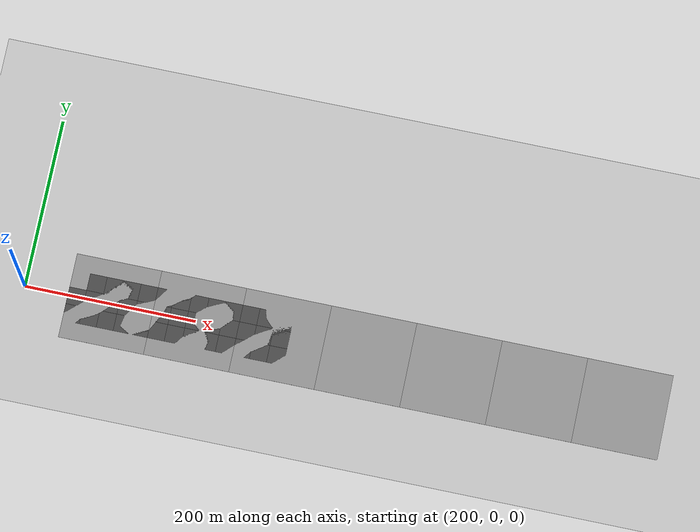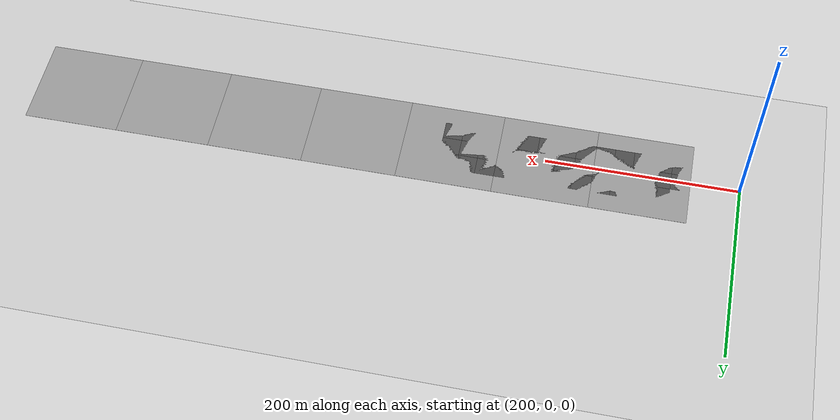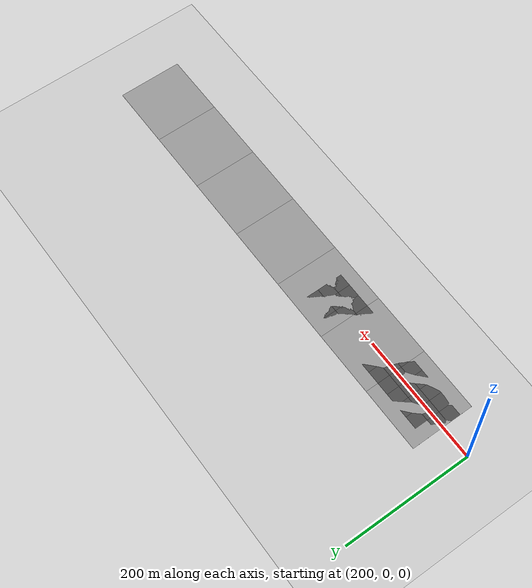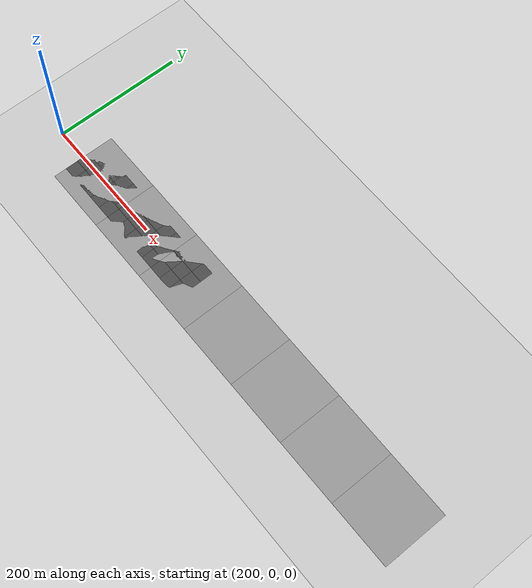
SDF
<sdf version="1.4">
 <world name="default">
  <model name="ground_plane">
   <static>1</static>
   <link name="link">
    <collision name="collision">
     <geometry><plane><normal>0 0 1</normal><size>100 100</size></plane></geometry>
     <surface><friction><ode><mu>100</mu><mu2>50</mu2></ode></friction></surface>
    </collision>
    <visual name="visual">
     <cast_shadows>0</cast_shadows>
     <geometry><plane><normal>0 0 1</normal><size>100 100</size></plane></geometry>
     <material>
      <script><uri>file://media/materials/scripts/gazebo.material</uri><name>Gazebo/Grey</name></script>
     </material>
    </visual>
    <velocity_decay><linear>0</linear><angular>0</angular></velocity_decay>
   </link>
  </model>
  <model name="ground_plane_2">
   <static>1</static>
   <link name="link">
    <collision name="collision">
     <geometry><plane><normal>0 0 1</normal><size>100 100</size></plane></geometry>
     <surface><friction><ode><mu>100</mu><mu2>50</mu2></ode></friction></surface>
    </collision>
    <visual name="visual">
     <cast_shadows>0</cast_shadows>
     <geometry><plane><normal>0 0 1</normal><size>100 100</size></plane></geometry>
     <material>
      <script><uri>file://media/materials/scripts/gazebo.material</uri><name>Gazebo/Grey</name></script>
     </material>
    </visual>
    <velocity_decay><linear>0</linear><angular>0</angular></velocity_decay>
   </link>
   <pose>300 0 0 0 -0 0</pose>
  </model>
  <model name="ground_plane_3">
   <static>1</static>
   <link name="link">
    <collision name="collision">
     <geometry><plane><normal>0 0 1</normal><size>100 100</size></plane></geometry>
     <surface><friction><ode><mu>100</mu><mu2>50</mu2></ode></friction></surface>
    </collision>
    <visual name="visual">
     <cast_shadows>0</cast_shadows>
     <geometry><plane><normal>0 0 1</normal><size>100 100</size></plane></geometry>
     <material>
      <script><uri>file://media/materials/scripts/gazebo.material</uri><name>Gazebo/Grey</name></script>
     </material>
    </visual>
    <velocity_decay><linear>0</linear><angular>0</angular></velocity_decay>
   </link>
   <pose>400 0 0 0 -0 0</pose>
  </model>
  <model name="ground_plane_4">
   <static>1</static>
   <link name="link">
    <collision name="collision">
     <geometry><plane><normal>0 0 1</normal><size>100 100</size></plane></geometry>
     <surface><friction><ode><mu>100</mu><mu2>50</mu2></ode></friction></surface>
    </collision>
    <visual name="visual">
     <cast_shadows>0</cast_shadows>
     <geometry><plane><normal>0 0 1</normal><size>100 100</size></plane></geometry>
     <material>
      <script><uri>file://media/materials/scripts/gazebo.material</uri><name>Gazebo/Grey</name></script>
     </material>
    </visual>
    <velocity_decay><linear>0</linear><angular>0</angular></velocity_decay>
   </link>
   <pose>500 0 0 0 -0 0</pose>
  </model>
  <model name="ground_plane_5">
   <static>1</static>
   <link name="link">
    <collision name="collision">
     <geometry><plane><normal>0 0 1</normal><size>100 100</size></plane></geometry>
     <surface><friction><ode><mu>100</mu><mu2>50</mu2></ode></friction></surface>
    </collision>
    <visual name="visual">
     <cast_shadows>0</cast_shadows>
     <geometry><plane><normal>0 0 1</normal><size>100 100</size></plane></geometry>
     <material>
      <script><uri>file://media/materials/scripts/gazebo.material</uri><name>Gazebo/Grey</name></script>
     </material>
    </visual>
    <velocity_decay><linear>0</linear><angular>0</angular></velocity_decay>
   </link>
   <pose>600 0 0 0 -0 0</pose>
  </model>
  <model name="ground_plane_6">
   <static>1</static>
   <link name="link">
    <collision name="collision">
     <geometry><plane><normal>0 0 1</normal><size>100 100</size></plane></geometry>
     <surface><friction><ode><mu>100</mu><mu2>50</mu2></ode></friction></surface>
    </collision>
    <visual name="visual">
     <cast_shadows>0</cast_shadows>
     <geometry><plane><normal>0 0 1</normal><size>100 100</size></plane></geometry>
     <material>
      <script><uri>file://media/materials/scripts/gazebo.material</uri><name>Gazebo/Grey</name></script>
     </material>
    </visual>
    <velocity_decay><linear>0</linear><angular>0</angular></velocity_decay>
   </link>
   <pose>700 0 0 0 -0 0</pose>
  </model>
  <model name="ground_plane_7">
   <static>1</static>
   <link name="link">
    <collision name="collision">
     <geometry><plane><normal>0 0 1</normal><size>100 100</size></plane></geometry>
     <surface><friction><ode><mu>100</mu><mu2>50</mu2></ode></friction></surface>
    </collision>
    <visual name="visual">
     <cast_shadows>0</cast_shadows>
     <geometry><plane><normal>0 0 1</normal><size>100 100</size></plane></geometry>
     <material>
      <script><uri>file://media/materials/scripts/gazebo.material</uri><name>Gazebo/Grey</name></script>
     </material>
    </visual>
    <velocity_decay><linear>0</linear><angular>0</angular></velocity_decay>
   </link>
   <pose>800 0 0 0 -0 0</pose>
  </model>
  <model name="ground_plane_8">
   <static>1</static>
   <link name="link">
    <collision name="collision">
     <geometry><plane><normal>0 0 1</normal><size>100 100</size></plane></geometry>
     <surface><friction><ode><mu>100</mu><mu2>50</mu2></ode></friction></surface>
    </collision>
    <visual name="visual">
     <cast_shadows>0</cast_shadows>
     <geometry><plane><normal>0 0 1</normal><size>100 100</size></plane></geometry>
     <material>
      <script><uri>file://media/materials/scripts/gazebo.material</uri><name>Gazebo/Grey</name></script>
     </material>
    </visual>
    <velocity_decay><linear>0</linear><angular>0</angular></velocity_decay>
   </link>
   <pose>900 0 0 0 -0 0</pose>
  </model>
  <model name="asphalt_plane_8">
   <static>1</static>
   <link name="link">
    <collision name="collision"><geometry><box><size>20 20 0.1</size></box></geometry></collision>
    <visual name="visual">
     <cast_shadows>0</cast_shadows>
     <geometry><box><size>20 20 0.1</size></box></geometry>
     <material>
      <script>
       <uri>model://asphalt_plane/materials/scripts</uri>
       <uri>model://asphalt_plane/materials/textures</uri>
       <name>vrc/asphalt</name>
      </script>
     </material>
    </visual>
    <velocity_decay><linear>0</linear><angular>0</angular></velocity_decay>
   </link>
   <pose>260 0 0 0 -0 0</pose>
  </model>
  <model name="asphalt_plane_9">
   <static>1</static>
   <link name="link">
    <collision name="collision"><geometry><box><size>20 20 0.1</size></box></geometry></collision>
    <visual name="visual">
     <cast_shadows>0</cast_shadows>
     <geometry><box><size>20 20 0.1</size></box></geometry>
     <material>
      <script>
       <uri>model://asphalt_plane/materials/scripts</uri>
       <uri>model://asphalt_plane/materials/textures</uri>
       <name>vrc/asphalt</name>
      </script>
     </material>
    </visual>
    <velocity_decay><linear>0</linear><angular>0</angular></velocity_decay>
   </link>
   <pose>260 -20 0 0 -0 0</pose>
  </model>
  <model name="asphalt_plane_10">
   <static>1</static>
   <link name="link">
    <collision name="collision"><geometry><box><size>20 20 0.1</size></box></geometry></collision>
    <visual name="visual">
     <cast_shadows>0</cast_shadows>
     <geometry><box><size>20 20 0.1</size></box></geometry>
     <material>
      <script>
       <uri>model://asphalt_plane/materials/scripts</uri>
       <uri>model://asphalt_plane/materials/textures</uri>
       <name>vrc/asphalt</name>
      </script>
     </material>
    </visual>
    <velocity_decay><linear>0</linear><angular>0</angular></velocity_decay>
   </link>
   <pose>280 20 0 0 -0 0</pose>
  </model>
  <model name="asphalt_plane_11">
   <static>1</static>
   <link name="link">
    <collision name="collision"><geometry><box><size>20 20 0.1</size></box></geometry></collision>
    <visual name="visual">
     <cast_shadows>0</cast_shadows>
     <geometry><box><size>20 20 0.1</size></box></geometry>
     <material>
      <script>
       <uri>model://asphalt_plane/materials/scripts</uri>
       <uri>model://asphalt_plane/materials/textures</uri>
       <name>vrc/asphalt</name>
      </script>
     </material>
    </visual>
    <velocity_decay><linear>0</linear><angular>0</angular></velocity_decay>
   </link>
   <pose>280 0 0 0 -0 0</pose>
  </model>
  <model name="asphalt_plane_12">
   <static>1</static>
   <link name="link">
    <collision name="collision"><geometry><box><size>20 20 0.1</size></box></geometry></collision>
    <visual name="visual">
     <cast_shadows>0</cast_shadows>
     <geometry><box><size>20 20 0.1</size></box></geometry>
     <material>
      <script>
       <uri>model://asphalt_plane/materials/scripts</uri>
       <uri>model://asphalt_plane/materials/textures</uri>
       <name>vrc/asphalt</name>
      </script>
     </material>
    </visual>
    <velocity_decay><linear>0</linear><angular>0</angular></velocity_decay>
   </link>
   <pose>280 -20 0 0 -0 0</pose>
  </model>
  <model name="asphalt_plane_13">
   <static>1</static>
   <link name="link">
    <collision name="collision"><geometry><box><size>20 20 0.1</size></box></geometry></collision>
    <visual name="visual">
     <cast_shadows>0</cast_shadows>
     <geometry><box><size>20 20 0.1</size></box></geometry>
     <material>
      <script>
       <uri>model://asphalt_plane/materials/scripts</uri>
       <uri>model://asphalt_plane/materials/textures</uri>
       <name>vrc/asphalt</name>
      </script>
     </material>
    </visual>
    <velocity_decay><linear>0</linear><angular>0</angular></velocity_decay>
   </link>
   <pose>300 -20 0 0 -0 0</pose>
  </model>
  <model name="asphalt_plane_14">
   <static>1</static>
   <link name="link">
    <collision name="collision"><geometry><box><size>20 20 0.1</size></box></geometry></collision>
    <visual name="visual">
     <cast_shadows>0</cast_shadows>
     <geometry><box><size>20 20 0.1</size></box></geometry>
     <material>
      <script>
       <uri>model://asphalt_plane/materials/scripts</uri>
       <uri>model://asphalt_plane/materials/textures</uri>
       <name>vrc/asphalt</name>
      </script>
     </material>
    </visual>
    <velocity_decay><linear>0</linear><angular>0</angular></velocity_decay>
   </link>
   <pose>300 0 0 0 -0 0</pose>
  </model>
  <model name="asphalt_plane_15">
   <static>1</static>
   <link name="link">
    <collision name="collision"><geometry><box><size>20 20 0.1</size></box></geometry></collision>
    <visual name="visual">
     <cast_shadows>0</cast_shadows>
     <geometry><box><size>20 20 0.1</size></box></geometry>
     <material>
      <script>
       <uri>model://asphalt_plane/materials/scripts</uri>
       <uri>model://asphalt_plane/materials/textures</uri>
       <name>vrc/asphalt</name>
      </script>
     </material>
    </visual>
    <velocity_decay><linear>0</linear><angular>0</angular></velocity_decay>
   </link>
   <pose>300 20 0 0 -0 0</pose>
  </model>
  <model name="asphalt_plane_16">
   <static>1</static>
   <link name="link">
    <collision name="collision"><geometry><box><size>20 20 0.1</size></box></geometry></collision>
    <visual name="visual">
     <cast_shadows>0</cast_shadows>
     <geometry><box><size>20 20 0.1</size></box></geometry>
     <material>
      <script>
       <uri>model://asphalt_plane/materials/scripts</uri>
       <uri>model://asphalt_plane/materials/textures</uri>
       <name>vrc/asphalt</name>
      </script>
     </material>
    </visual>
    <velocity_decay><linear>0</linear><angular>0</angular></velocity_decay>
   </link>
   <pose>320 -20 0 0 -0 0</pose>
  </model>
  <model name="asphalt_plane_17">
   <static>1</static>
   <link name="link">
    <collision name="collision"><geometry><box><size>20 20 0.1</size></box></geometry></collision>
    <visual name="visual">
     <cast_shadows>0</cast_shadows>
     <geometry><box><size>20 20 0.1</size></box></geometry>
     <material>
      <script>
       <uri>model://asphalt_plane/materials/scripts</uri>
       <uri>model://asphalt_plane/materials/textures</uri>
       <name>vrc/asphalt</name>
      </script>
     </material>
    </visual>
    <velocity_decay><linear>0</linear><angular>0</angular></velocity_decay>
   </link>
   <pose>320 0 0 0 -0 0</pose>
  </model>
  <model name="asphalt_plane_18">
   <static>1</static>
   <link name="link">
    <collision name="collision"><geometry><box><size>20 20 0.1</size></box></geometry></collision>
    <visual name="visual">
     <cast_shadows>0</cast_shadows>
     <geometry><box><size>20 20 0.1</size></box></geometry>
     <material>
      <script>
       <uri>model://asphalt_plane/materials/scripts</uri>
       <uri>model://asphalt_plane/materials/textures</uri>
       <name>vrc/asphalt</name>
      </script>
     </material>
    </visual>
    <velocity_decay><linear>0</linear><angular>0</angular></velocity_decay>
   </link>
   <pose>340 -20 0 0 -0 0</pose>
  </model>
  <model name="asphalt_plane_19">
   <static>1</static>
   <link name="link">
    <collision name="collision"><geometry><box><size>20 20 0.1</size></box></geometry></collision>
    <visual name="visual">
     <cast_shadows>0</cast_shadows>
     <geometry><box><size>20 20 0.1</size></box></geometry>
     <material>
      <script>
       <uri>model://asphalt_plane/materials/scripts</uri>
       <uri>model://asphalt_plane/materials/textures</uri>
       <name>vrc/asphalt</name>
      </script>
     </material>
    </visual>
    <velocity_decay><linear>0</linear><angular>0</angular></velocity_decay>
   </link>
   <pose>340 0 0 0 -0 0</pose>
  </model>
  <model name="asphalt_plane_20">
   <static>1</static>
   <link name="link">
    <collision name="collision"><geometry><box><size>20 20 0.1</size></box></geometry></collision>
    <visual name="visual">
     <cast_shadows>0</cast_shadows>
     <geometry><box><size>20 20 0.1</size></box></geometry>
     <material>
      <script>
       <uri>model://asphalt_plane/materials/scripts</uri>
       <uri>model://asphalt_plane/materials/textures</uri>
       <name>vrc/asphalt</name>
      </script>
     </material>
    </visual>
    <velocity_decay><linear>0</linear><angular>0</angular></velocity_decay>
   </link>
   <pose>320 20 0 0 -0 0</pose>
  </model>
  <model name="asphalt_plane_21">
   <static>1</static>
   <link name="link">
    <collision name="collision"><geometry><box><size>20 20 0.1</size></box></geometry></collision>
    <visual name="visual">
     <cast_shadows>0</cast_shadows>
     <geometry><box><size>20 20 0.1</size></box></geometry>
     <material>
      <script>
       <uri>model://asphalt_plane/materials/scripts</uri>
       <uri>model://asphalt_plane/materials/textures</uri>
       <name>vrc/asphalt</name>
      </script>
     </material>
    </visual>
    <velocity_decay><linear>0</linear><angular>0</angular></velocity_decay>
   </link>
   <pose>340 20 0 0 -0 0</pose>
  </model>
  <model name="asphalt_plane_22">
   <static>1</static>
   <link name="link">
    <collision name="collision"><geometry><box><size>20 20 0.1</size></box></geometry></collision>
    <visual name="visual">
     <cast_shadows>0</cast_shadows>
     <geometry><box><size>20 20 0.1</size></box></geometry>
     <material>
      <script>
       <uri>model://asphalt_plane/materials/scripts</uri>
       <uri>model://asphalt_plane/materials/textures</uri>
       <name>vrc/asphalt</name>
      </script>
     </material>
    </visual>
    <velocity_decay><linear>0</linear><angular>0</angular></velocity_decay>
   </link>
   <pose>360 -20 0 0 -0 0</pose>
  </model>
  <model name="asphalt_plane_23">
   <static>1</static>
   <link name="link">
    <collision name="collision"><geometry><box><size>20 20 0.1</size></box></geometry></collision>
    <visual name="visual">
     <cast_shadows>0</cast_shadows>
     <geometry><box><size>20 20 0.1</size></box></geometry>
     <material>
      <script>
       <uri>model://asphalt_plane/materials/scripts</uri>
       <uri>model://asphalt_plane/materials/textures</uri>
       <name>vrc/asphalt</name>
      </script>
     </material>
    </visual>
    <velocity_decay><linear>0</linear><angular>0</angular></velocity_decay>
   </link>
   <pose>360 0 0 0 -0 0</pose>
  </model>
  <model name="asphalt_plane_24">
   <static>1</static>
   <link name="link">
    <collision name="collision"><geometry><box><size>20 20 0.1</size></box></geometry></collision>
    <visual name="visual">
     <cast_shadows>0</cast_shadows>
     <geometry><box><size>20 20 0.1</size></box></geometry>
     <material>
      <script>
       <uri>model://asphalt_plane/materials/scripts</uri>
       <uri>model://asphalt_plane/materials/textures</uri>
       <name>vrc/asphalt</name>
      </script>
     </material>
    </visual>
    <velocity_decay><linear>0</linear><angular>0</angular></velocity_decay>
   </link>
   <pose>360 20 0 0 -0 0</pose>
  </model>
  <model name="asphalt_plane_25">
   <static>1</static>
   <link name="link">
    <collision name="collision"><geometry><box><size>20 20 0.1</size></box></geometry></collision>
    <visual name="visual">
     <cast_shadows>0</cast_shadows>
     <geometry><box><size>20 20 0.1</size></box></geometry>
     <material>
      <script>
       <uri>model://asphalt_plane/materials/scripts</uri>
       <uri>model://asphalt_plane/materials/textures</uri>
       <name>vrc/asphalt</name>
      </script>
     </material>
    </visual>
    <velocity_decay><linear>0</linear><angular>0</angular></velocity_decay>
   </link>
   <pose>380 -20 0 0 -0 0</pose>
  </model>
  <model name="asphalt_plane_26">
   <static>1</static>
   <link name="link">
    <collision name="collision"><geometry><box><size>20 20 0.1</size></box></geometry></collision>
    <visual name="visual">
     <cast_shadows>0</cast_shadows>
     <geometry><box><size>20 20 0.1</size></box></geometry>
     <material>
      <script>
       <uri>model://asphalt_plane/materials/scripts</uri>
       <uri>model://asphalt_plane/materials/textures</uri>
       <name>vrc/asphalt</name>
      </script>
     </material>
    </visual>
    <velocity_decay><linear>0</linear><angular>0</angular></velocity_decay>
   </link>
   <pose>380 0 0 0 -0 0</pose>
  </model>
  <model name="asphalt_plane_27">
   <static>1</static>
   <link name="link">
    <collision name="collision"><geometry><box><size>20 20 0.1</size></box></geometry></collision>
    <visual name="visual">
     <cast_shadows>0</cast_shadows>
     <geometry><box><size>20 20 0.1</size></box></geometry>
     <material>
      <script>
       <uri>model://asphalt_plane/materials/scripts</uri>
       <uri>model://asphalt_plane/materials/textures</uri>
       <name>vrc/asphalt</name>
      </script>
     </material>
    </visual>
    <velocity_decay><linear>0</linear><angular>0</angular></velocity_decay>
   </link>
   <pose>380 20 0 0 -0 0</pose>
  </model>
  <model name="asphalt_plane_28">
   <static>1</static>
   <link name="link">
    <collision name="collision"><geometry><box><size>20 20 0.1</size></box></geometry></collision>
    <visual name="visual">
     <cast_shadows>0</cast_shadows>
     <geometry><box><size>20 20 0.1</size></box></geometry>
     <material>
      <script>
       <uri>model://asphalt_plane/materials/scripts</uri>
       <uri>model://asphalt_plane/materials/textures</uri>
       <name>vrc/asphalt</name>
      </script>
     </material>
    </visual>
    <velocity_decay><linear>0</linear><angular>0</angular></velocity_decay>
   </link>
   <pose>400 -20 0 0 -0 0</pose>
  </model>
  <model name="asphalt_plane_29">
   <static>1</static>
   <link name="link">
    <collision name="collision"><geometry><box><size>20 20 0.1</size></box></geometry></collision>
    <visual name="visual">
     <cast_shadows>0</cast_shadows>
     <geometry><box><size>20 20 0.1</size></box></geometry>
     <material>
      <script>
       <uri>model://asphalt_plane/materials/scripts</uri>
       <uri>model://asphalt_plane/materials/textures</uri>
       <name>vrc/asphalt</name>
      </script>
     </material>
    </visual>
    <velocity_decay><linear>0</linear><angular>0</angular></velocity_decay>
   </link>
   <pose>400 0 0 0 -0 0</pose>
  </model>
  <model name="asphalt_plane_30">
   <static>1</static>
   <link name="link">
    <collision name="collision"><geometry><box><size>20 20 0.1</size></box></geometry></collision>
    <visual name="visual">
     <cast_shadows>0</cast_shadows>
     <geometry><box><size>20 20 0.1</size></box></geometry>
     <material>
      <script>
       <uri>model://asphalt_plane/materials/scripts</uri>
       <uri>model://asphalt_plane/materials/textures</uri>
       <name>vrc/asphalt</name>
      </script>
     </material>
    </visual>
    <velocity_decay><linear>0</linear><angular>0</angular></velocity_decay>
   </link>
   <pose>400 20 0 0 -0 0</pose>
  </model>
  <model name="asphalt_plane_31">
   <static>1</static>
   <link name="link">
    <collision name="collision"><geometry><box><size>20 20 0.1</size></box></geometry></collision>
    <visual name="visual">
     <cast_shadows>0</cast_shadows>
     <geometry><box><size>20 20 0.1</size></box></geometry>
     <material>
      <script>
       <uri>model://asphalt_plane/materials/scripts</uri>
       <uri>model://asphalt_plane/materials/textures</uri>
       <name>vrc/asphalt</name>
      </script>
     </material>
    </visual>
    <velocity_decay><linear>0</linear><angular>0</angular></velocity_decay>
   </link>
   <pose>420 -20 0 0 -0 0</pose>
  </model>
  <model name="asphalt_plane_32">
   <static>1</static>
   <link name="link">
    <collision name="collision"><geometry><box><size>20 20 0.1</size></box></geometry></collision>
    <visual name="visual">
     <cast_shadows>0</cast_shadows>
     <geometry><box><size>20 20 0.1</size></box></geometry>
     <material>
      <script>
       <uri>model://asphalt_plane/materials/scripts</uri>
       <uri>model://asphalt_plane/materials/textures</uri>
       <name>vrc/asphalt</name>
      </script>
     </material>
    </visual>
    <velocity_decay><linear>0</linear><angular>0</angular></velocity_decay>
   </link>
   <pose>420 0 0 0 -0 0</pose>
  </model>
  <model name="asphalt_plane_33">
   <static>1</static>
   <link name="link">
    <collision name="collision"><geometry><box><size>20 20 0.1</size></box></geometry></collision>
    <visual name="visual">
     <cast_shadows>0</cast_shadows>
     <geometry><box><size>20 20 0.1</size></box></geometry>
     <material>
      <script>
       <uri>model://asphalt_plane/materials/scripts</uri>
       <uri>model://asphalt_plane/materials/textures</uri>
       <name>vrc/asphalt</name>
      </script>
     </material>
    </visual>
    <velocity_decay><linear>0</linear><angular>0</angular></velocity_decay>
   </link>
   <pose>420 20 0 0 -0 0</pose>
  </model>
  <model name="asphalt_plane_34">
   <static>1</static>
   <link name="link">
    <collision name="collision"><geometry><box><size>20 20 0.1</size></box></geometry></collision>
    <visual name="visual">
     <cast_shadows>0</cast_shadows>
     <geometry><box><size>20 20 0.1</size></box></geometry>
     <material>
      <script>
       <uri>model://asphalt_plane/materials/scripts</uri>
       <uri>model://asphalt_plane/materials/textures</uri>
       <name>vrc/asphalt</name>
      </script>
     </material>
    </visual>
    <velocity_decay><linear>0</linear><angular>0</angular></velocity_decay>
   </link>
   <pose>440 -20 0 0 -0 0</pose>
  </model>
  <model name="asphalt_plane_35">
   <static>1</static>
   <link name="link">
    <collision name="collision"><geometry><box><size>20 20 0.1</size></box></geometry></collision>
    <visual name="visual">
     <cast_shadows>0</cast_shadows>
     <geometry><box><size>20 20 0.1</size></box></geometry>
     <material>
      <script>
       <uri>model://asphalt_plane/materials/scripts</uri>
       <uri>model://asphalt_plane/materials/textures</uri>
       <name>vrc/asphalt</name>
      </script>
     </material>
    </visual>
    <velocity_decay><linear>0</linear><angular>0</angular></velocity_decay>
   </link>
   <pose>440 0 0 0 -0 0</pose>
  </model>
  <model name="asphalt_plane_36">
   <static>1</static>
   <link name="link">
    <collision name="collision"><geometry><box><size>20 20 0.1</size></box></geometry></collision>
    <visual name="visual">
     <cast_shadows>0</cast_shadows>
     <geometry><box><size>20 20 0.1</size></box></geometry>
     <material>
      <script>
       <uri>model://asphalt_plane/materials/scripts</uri>
       <uri>model://asphalt_plane/materials/textures</uri>
       <name>vrc/asphalt</name>
      </script>
     </material>
    </visual>
    <velocity_decay><linear>0</linear><angular>0</angular></velocity_decay>
   </link>
   <pose>440 20 0 0 -0 0</pose>
  </model>
  <model name="asphalt_plane_39">
   <static>1</static>
   <link name="link">
    <collision name="collision"><geometry><box><size>20 20 0.1</size></box></geometry></collision>
    <visual name="visual">
     <cast_shadows>0</cast_shadows>
     <geometry><box><size>20 20 0.1</size></box></geometry>
     <material>
      <script>
       <uri>model://asphalt_plane/materials/scripts</uri>
       <uri>model://asphalt_plane/materials/textures</uri>
       <name>vrc/asphalt</name>
      </script>
     </material>
    </visual>
    <velocity_decay><linear>0</linear><angular>0</angular></velocity_decay>
   </link>
   <pose>460 -20 0 0 -0 0</pose>
  </model>
  <model name="asphalt_plane_40">
   <static>1</static>
   <link name="link">
    <collision name="collision"><geometry><box><size>20 20 0.1</size></box></geometry></collision>
    <visual name="visual">
     <cast_shadows>0</cast_shadows>
     <geometry><box><size>20 20 0.1</size></box></geometry>
     <material>
      <script>
       <uri>model://asphalt_plane/materials/scripts</uri>
       <uri>model://asphalt_plane/materials/textures</uri>
       <name>vrc/asphalt</name>
      </script>
     </material>
    </visual>
    <velocity_decay><linear>0</linear><angular>0</angular></velocity_decay>
   </link>
   <pose>460 0 0 0 -0 0</pose>
  </model>
  <model name="asphalt_plane_41">
   <static>1</static>
   <link name="link">
    <collision name="collision"><geometry><box><size>20 20 0.1</size></box></geometry></collision>
    <visual name="visual">
     <cast_shadows>0</cast_shadows>
     <geometry><box><size>20 20 0.1</size></box></geometry>
     <material>
      <script>
       <uri>model://asphalt_plane/materials/scripts</uri>
       <uri>model://asphalt_plane/materials/textures</uri>
       <name>vrc/asphalt</name>
      </script>
     </material>
    </visual>
    <velocity_decay><linear>0</linear><angular>0</angular></velocity_decay>
   </link>
   <pose>460 20 0 0 -0 0</pose>
  </model>
  <model name="asphalt_plane_42">
   <static>1</static>
   <link name="link">
    <collision name="collision"><geometry><box><size>20 20 0.1</size></box></geometry></collision>
    <visual name="visual">
     <cast_shadows>0</cast_shadows>
     <geometry><box><size>20 20 0.1</size></box></geometry>
     <material>
      <script>
       <uri>model://asphalt_plane/materials/scripts</uri>
       <uri>model://asphalt_plane/materials/textures</uri>
       <name>vrc/asphalt</name>
      </script>
     </material>
    </visual>
    <velocity_decay><linear>0</linear><angular>0</angular></velocity_decay>
   </link>
   <pose>480 20 0 0 -0 0</pose>
  </model>
  <model name="asphalt_plane_43">
   <static>1</static>
   <link name="link">
    <collision name="collision"><geometry><box><size>20 20 0.1</size></box></geometry></collision>
    <visual name="visual">
     <cast_shadows>0</cast_shadows>
     <geometry><box><size>20 20 0.1</size></box></geometry>
     <material>
      <script>
       <uri>model://asphalt_plane/materials/scripts</uri>
       <uri>model://asphalt_plane/materials/textures</uri>
       <name>vrc/asphalt</name>
      </script>
     </material>
    </visual>
    <velocity_decay><linear>0</linear><angular>0</angular></velocity_decay>
   </link>
   <pose>480 0 0 0 -0 0</pose>
  </model>
  <model name="asphalt_plane_44">
   <static>1</static>
   <link name="link">
    <collision name="collision"><geometry><box><size>20 20 0.1</size></box></geometry></collision>
    <visual name="visual">
     <cast_shadows>0</cast_shadows>
     <geometry><box><size>20 20 0.1</size></box></geometry>
     <material>
      <script>
       <uri>model://asphalt_plane/materials/scripts</uri>
       <uri>model://asphalt_plane/materials/textures</uri>
       <name>vrc/asphalt</name>
      </script>
     </material>
    </visual>
    <velocity_decay><linear>0</linear><angular>0</angular></velocity_decay>
   </link>
   <pose>480 -20 0 0 -0 0</pose>
  </model>
  <model name="asphalt_plane_45">
   <static>1</static>
   <link name="link">
    <collision name="collision"><geometry><box><size>20 20 0.1</size></box></geometry></collision>
    <visual name="visual">
     <cast_shadows>0</cast_shadows>
     <geometry><box><size>20 20 0.1</size></box></geometry>
     <material>
      <script>
       <uri>model://asphalt_plane/materials/scripts</uri>
       <uri>model://asphalt_plane/materials/textures</uri>
       <name>vrc/asphalt</name>
      </script>
     </material>
    </visual>
    <velocity_decay><linear>0</linear><angular>0</angular></velocity_decay>
   </link>
   <pose>500 -20 0 0 -0 0</pose>
  </model>
  <model name="asphalt_plane_46">
   <static>1</static>
   <link name="link">
    <collision name="collision"><geometry><box><size>20 20 0.1</size></box></geometry></collision>
    <visual name="visual">
     <cast_shadows>0</cast_shadows>
     <geometry><box><size>20 20 0.1</size></box></geometry>
     <material>
      <script>
       <uri>model://asphalt_plane/materials/scripts</uri>
       <uri>model://asphalt_plane/materials/textures</uri>
       <name>vrc/asphalt</name>
      </script>
     </material>
    </visual>
    <velocity_decay><linear>0</linear><angular>0</angular></velocity_decay>
   </link>
   <pose>500 0 0 0 -0 0</pose>
  </model>
  <model name="asphalt_plane_47">
   <static>1</static>
   <link name="link">
    <collision name="collision"><geometry><box><size>20 20 0.1</size></box></geometry></collision>
    <visual name="visual">
     <cast_shadows>0</cast_shadows>
     <geometry><box><size>20 20 0.1</size></box></geometry>
     <material>
      <script>
       <uri>model://asphalt_plane/materials/scripts</uri>
       <uri>model://asphalt_plane/materials/textures</uri>
       <name>vrc/asphalt</name>
      </script>
     </material>
    </visual>
    <velocity_decay><linear>0</linear><angular>0</angular></velocity_decay>
   </link>
   <pose>500 20 0 0 -0 0</pose>
  </model>
 </world>
</sdf>
